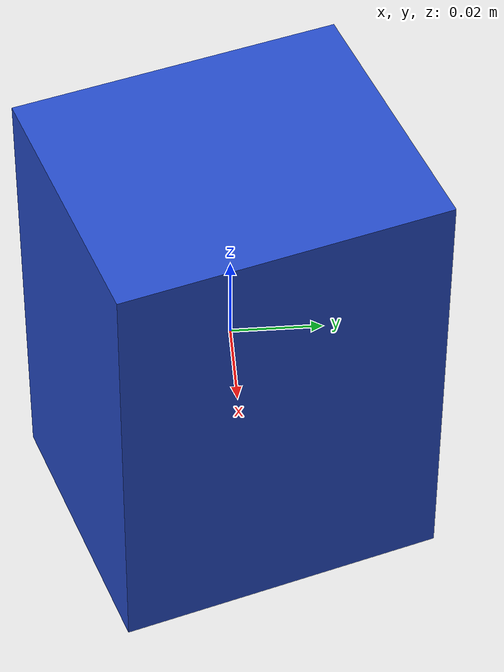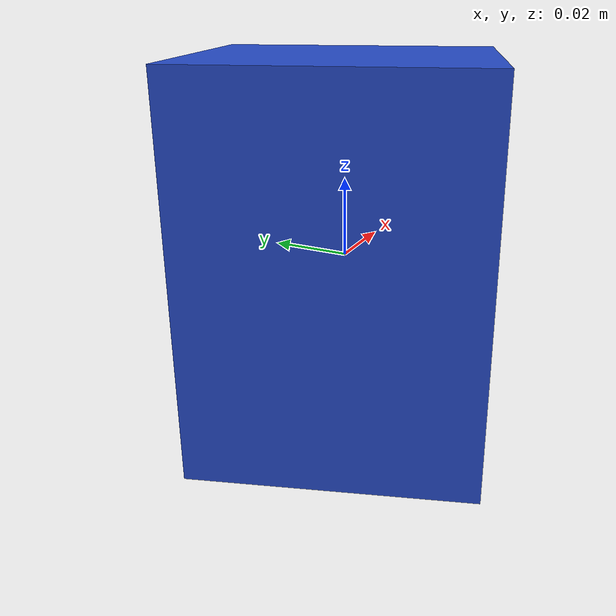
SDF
<sdf version="1.6"><model name="model_25"><static>true</static><link name="link"><pose>0 0 0 0 0 0.30571970069735815</pose><collision name="collision"><geometry><box><size>0.062251607335011144 0.07250422907515931 0.1</size></box></geometry></collision><visual name="visual"><geometry><box><size>0.062251607335011144 0.07250422907515931 0.1</size></box></geometry><material><script><name>Gazebo/Blue</name><uri>file://media/materials/scripts/gazebo.material</uri></script></material></visual></link></model></sdf>
